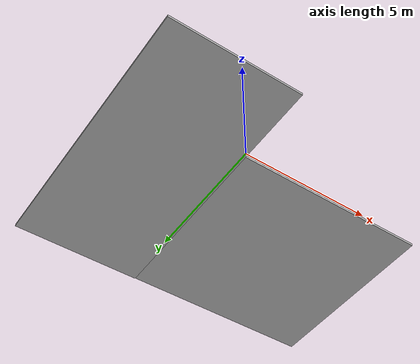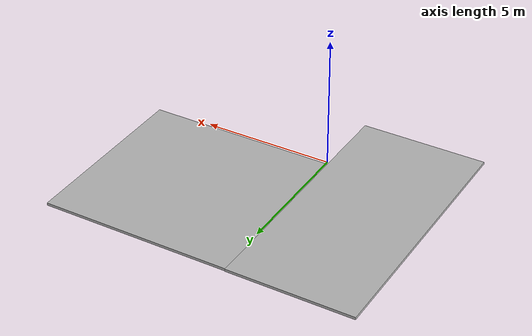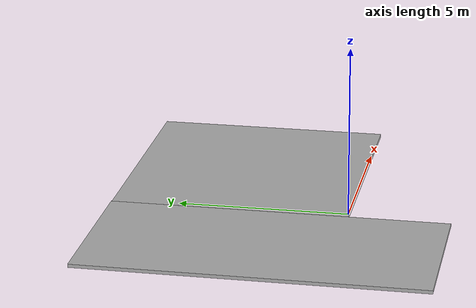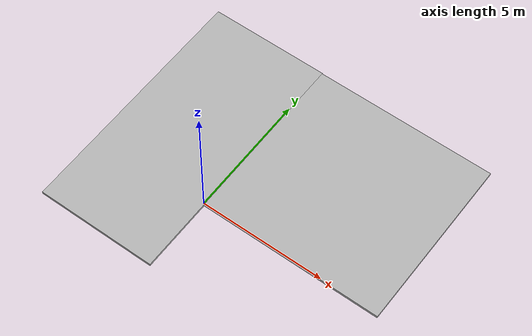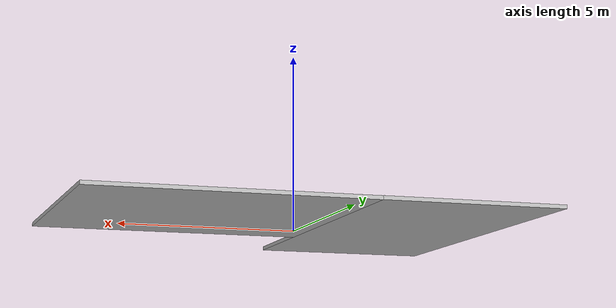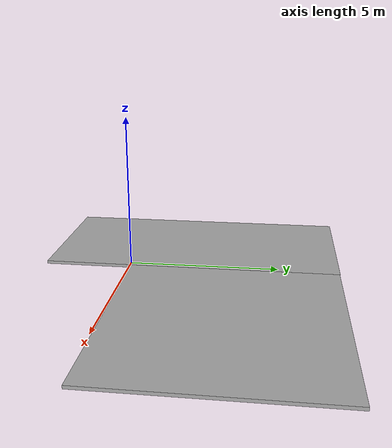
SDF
<?xml version='1.0'?>
<sdf version='1.6'>
  <model name='ground'>
      <static>1</static>
      <link name='ground_1'>
        <collision name='collision'>
          <geometry>
            <box>
              <size>7.3 7.04 0.1</size>
            </box>
          </geometry>
          <max_contacts>10</max_contacts>
          <surface>
            <contact>
              <ode/>
            </contact>
            <bounce/>
            <friction>
              <torsional>
                <ode/>
              </torsional>
              <ode/>
            </friction>
          </surface>
        </collision>
        <visual name='visual'>
          <geometry>
            <box>
              <size>7.3 7.04 0.1</size>
            </box>
          </geometry>
        </visual>
        <self_collide>0</self_collide>
        <enable_wind>0</enable_wind>
        <kinematic>0</kinematic>
				<pose frame=''>3.65 3.52 -0.06 0 -0 0</pose>
			</link>
      <link name='ground_2'>
        <collision name='collision'>
          <geometry>
            <box>
              <size>4.85 10.04 0.1</size>
            </box>
          </geometry>
          <max_contacts>10</max_contacts>
          <surface>
            <contact>
              <ode/>
            </contact>
            <bounce/>
            <friction>
              <torsional>
                <ode/>
              </torsional>
              <ode/>
            </friction>
          </surface>
        </collision>
        <visual name='visual'>
          <geometry>
            <box>
              <size>4.85 10.04 0.1</size>
            </box>
          </geometry>
        </visual>
        <self_collide>0</self_collide>
        <enable_wind>0</enable_wind>
        <kinematic>0</kinematic>
      	<pose frame=''>-2.425 2.04 -0.06 0 -0 0</pose>
			</link>
			<joint name='ground_joint' type='fixed'>
				<child>ground_1</child>
				<parent>ground_2</parent>
			</joint>
			<pose frame=''>0 0 -0.06 0 0 0 </pose>
			</model>

</sdf>
